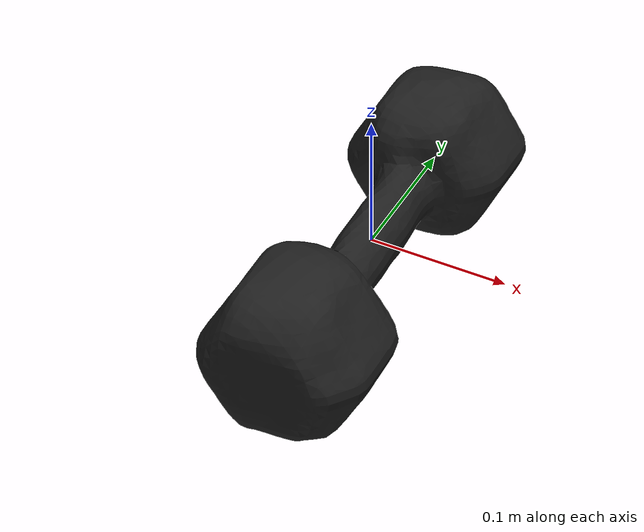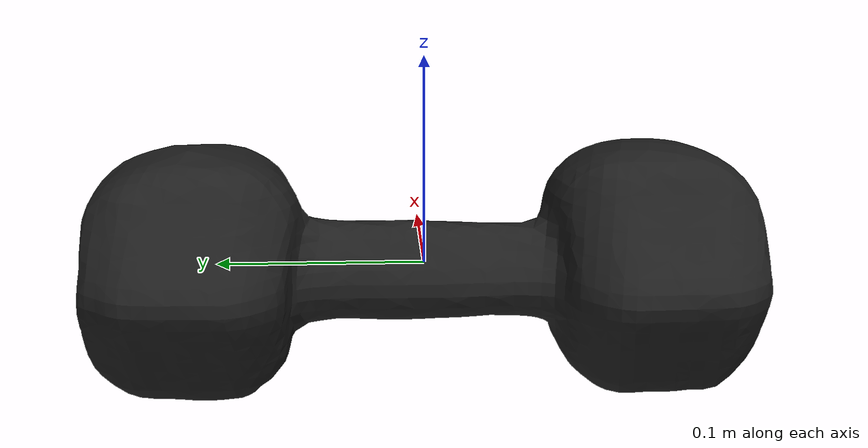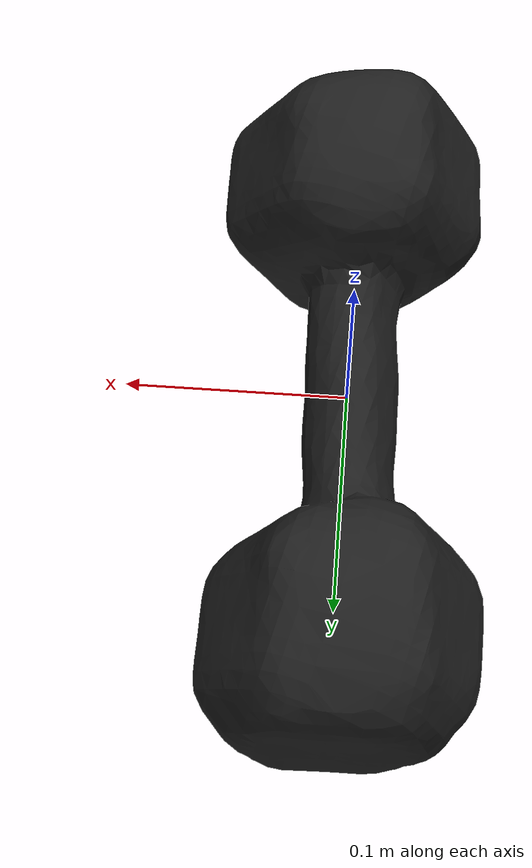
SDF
<sdf version='1.4'>
  <model name='weight20_model'>
    <link name='weight20'>
      <pose>0 0 0 0 -0 0</pose>
      <inertial>
        <pose>0 0.04 0 0 -0 0</pose>
        <mass>9.07</mass>
        <inertia>
          <ixx>1</ixx>
          <ixy>0</ixy>
          <ixz>0</ixz>
          <iyy>1</iyy>
          <iyz>0</iyz>
          <izz>1</izz>
        </inertia>
      </inertial>
      <collision name='weight20_collision'>
        <pose>0 0 0 1.57 -5.55112e-17 1.57</pose>
        <geometry>
          <mesh>
            <scale>1 1 1</scale>
            <uri>model://weight20/meshes/weight20.dae</uri>
          </mesh>
        </geometry>
        <surface>
          <contact>
            <ode/>
          </contact>
          <friction>
            <ode/>
          </friction>
        </surface>
      </collision>
      <visual name='weight20_visual'>
        <pose>0 0 0 1.57 -5.55112e-17 1.57</pose>
        <geometry>
          <mesh>
            <scale>1 1 1</scale>
            <uri>model://weight20/meshes/weight20.dae</uri>
          </mesh>
        </geometry>
        <material>
          <script>
            <name>Gazebo/Black</name>
            <uri>__default__</uri>
          </script>
        </material>
      </visual>
      <gravity>1</gravity>
      <velocity_decay>
        <linear>0</linear>
        <angular>0</angular>
      </velocity_decay>
      <self_collide>0</self_collide>
    </link>
  </model>
</sdf>
